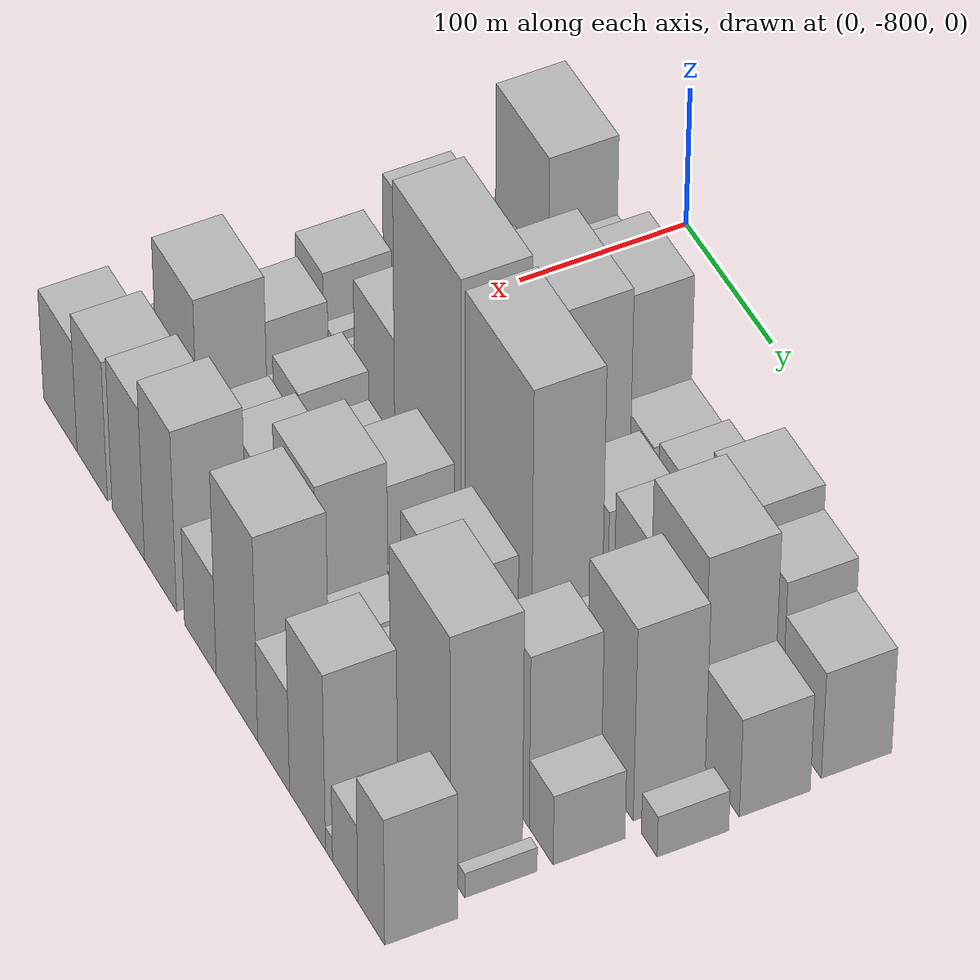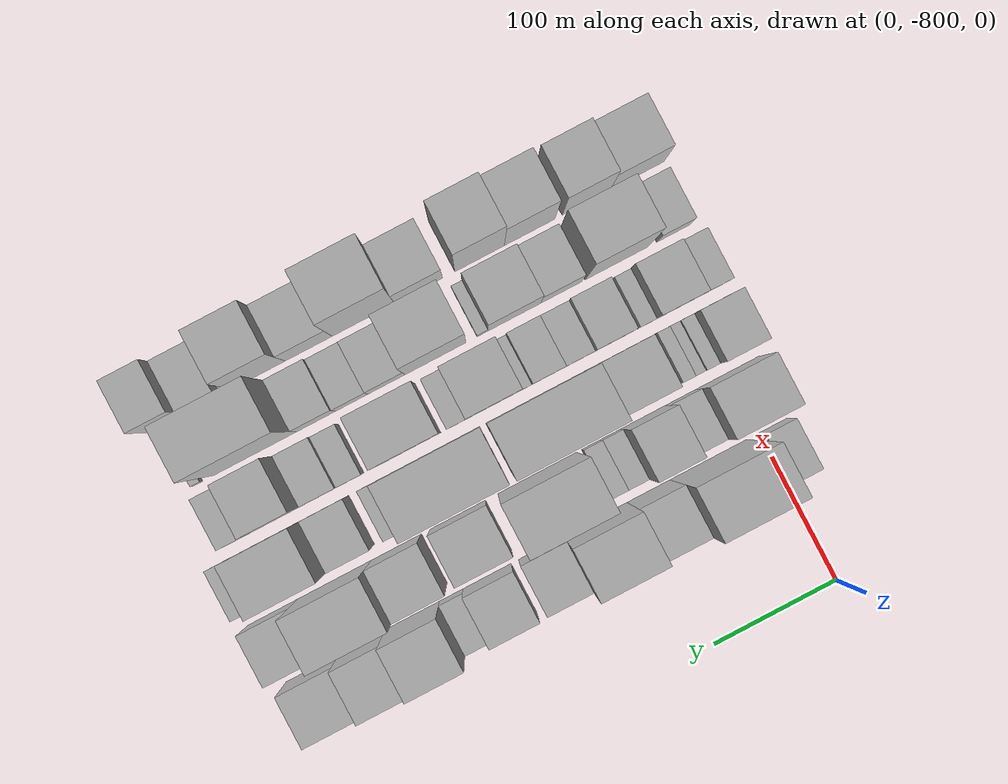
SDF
<sdf version="1.6">
 <world name="default">
  <model name="building_1">
   <static>1</static>
   <pose>100.0000 -809.6743 0 0.000000 0.000000 0.000000</pose>
   <link name="link">
    <pose>0 0 22.50 0 0 0</pose>
    <collision name="collision"><geometry><box><size>40.0000 24.6514 45.0000</size></box></geometry></collision>
    <visual name="visual">
     <cast_shadows>0</cast_shadows>
     <geometry><box><size>40.0000 24.6514 45.0000</size></box></geometry>
     <material>
      <script>
       <uri>model://HANNAS_wall/materials/scripts</uri>
       <uri>model://HANNAS_wall/materials/textures</uri>
       <name>vrc/HANNAS_wall</name>
      </script>
     </material>
    </visual>
   </link>
  </model>
  <model name="building_2">
   <static>1</static>
   <pose>100.0000 -758.1193 0 0.000000 0.000000 0.000000</pose>
   <link name="link">
    <pose>0 0 81.00 0 0 0</pose>
    <collision name="collision"><geometry><box><size>40.0000 62.4585 162.0000</size></box></geometry></collision>
    <visual name="visual">
     <cast_shadows>0</cast_shadows>
     <geometry><box><size>40.0000 62.4585 162.0000</size></box></geometry>
     <material>
      <script>
       <uri>model://HANNAS_wall/materials/scripts</uri>
       <uri>model://HANNAS_wall/materials/textures</uri>
       <name>vrc/HANNAS_wall</name>
      </script>
     </material>
    </visual>
   </link>
  </model>
  <model name="building_3">
   <static>1</static>
   <pose>100.0000 -709.3897 0 0.000000 0.000000 0.000000</pose>
   <link name="link">
    <pose>0 0 52.50 0 0 0</pose>
    <collision name="collision"><geometry><box><size>40.0000 35.0008 105.0000</size></box></geometry></collision>
    <visual name="visual">
     <cast_shadows>0</cast_shadows>
     <geometry><box><size>40.0000 35.0008 105.0000</size></box></geometry>
     <material>
      <script>
       <uri>model://HANNAS_wall/materials/scripts</uri>
       <uri>model://HANNAS_wall/materials/textures</uri>
       <name>vrc/HANNAS_wall</name>
      </script>
     </material>
    </visual>
   </link>
  </model>
  <model name="building_4">
   <static>1</static>
   <pose>100.0000 -665.8691 0 0.000000 0.000000 0.000000</pose>
   <link name="link">
    <pose>0 0 69.00 0 0 0</pose>
    <collision name="collision"><geometry><box><size>40.0000 52.0404 138.0000</size></box></geometry></collision>
    <visual name="visual">
     <cast_shadows>0</cast_shadows>
     <geometry><box><size>40.0000 52.0404 138.0000</size></box></geometry>
     <material>
      <script>
       <uri>model://HANNAS_wall/materials/scripts</uri>
       <uri>model://HANNAS_wall/materials/textures</uri>
       <name>vrc/HANNAS_wall</name>
      </script>
     </material>
    </visual>
   </link>
  </model>
  <model name="building_5">
   <static>1</static>
   <pose>100.0000 -621.6941 0 0.000000 0.000000 0.000000</pose>
   <link name="link">
    <pose>0 0 31.50 0 0 0</pose>
    <collision name="collision"><geometry><box><size>40.0000 36.3097 63.0000</size></box></geometry></collision>
    <visual name="visual">
     <cast_shadows>0</cast_shadows>
     <geometry><box><size>40.0000 36.3097 63.0000</size></box></geometry>
     <material>
      <script>
       <uri>model://HANNAS_wall/materials/scripts</uri>
       <uri>model://HANNAS_wall/materials/textures</uri>
       <name>vrc/HANNAS_wall</name>
      </script>
     </material>
    </visual>
   </link>
  </model>
  <model name="building_6">
   <static>1</static>
   <pose>100.0000 -577.8411 0 0.000000 0.000000 0.000000</pose>
   <link name="link">
    <pose>0 0 36.00 0 0 0</pose>
    <collision name="collision"><geometry><box><size>40.0000 39.3963 72.0000</size></box></geometry></collision>
    <visual name="visual">
     <cast_shadows>0</cast_shadows>
     <geometry><box><size>40.0000 39.3963 72.0000</size></box></geometry>
     <material>
      <script>
       <uri>model://HANNAS_wall/materials/scripts</uri>
       <uri>model://HANNAS_wall/materials/textures</uri>
       <name>vrc/HANNAS_wall</name>
      </script>
     </material>
    </visual>
   </link>
  </model>
  <model name="building_7">
   <static>1</static>
   <pose>100.0000 -548.6347 0 0.000000 0.000000 0.000000</pose>
   <link name="link">
    <pose>0 0 18.00 0 0 0</pose>
    <collision name="collision"><geometry><box><size>40.0000 19.0165 36.0000</size></box></geometry></collision>
    <visual name="visual">
     <cast_shadows>0</cast_shadows>
     <geometry><box><size>40.0000 19.0165 36.0000</size></box></geometry>
     <material>
      <script>
       <uri>model://HANNAS_wall/materials/scripts</uri>
       <uri>model://HANNAS_wall/materials/textures</uri>
       <name>vrc/HANNAS_wall</name>
      </script>
     </material>
    </visual>
   </link>
  </model>
  <model name="building_8">
   <static>1</static>
   <pose>100.0000 -516.9922 0 0.000000 0.000000 0.000000</pose>
   <link name="link">
    <pose>0 0 60.00 0 0 0</pose>
    <collision name="collision"><geometry><box><size>40.0000 44.2686 120.0000</size></box></geometry></collision>
    <visual name="visual">
     <cast_shadows>0</cast_shadows>
     <geometry><box><size>40.0000 44.2686 120.0000</size></box></geometry>
     <material>
      <script>
       <uri>model://HANNAS_wall/materials/scripts</uri>
       <uri>model://HANNAS_wall/materials/textures</uri>
       <name>vrc/HANNAS_wall</name>
      </script>
     </material>
    </visual>
   </link>
  </model>
  <model name="building_9">
   <static>1</static>
   <pose>100.0000 -476.2714 0 0.000000 0.000000 0.000000</pose>
   <link name="link">
    <pose>0 0 51.00 0 0 0</pose>
    <collision name="collision"><geometry><box><size>40.0000 37.1730 102.0000</size></box></geometry></collision>
    <visual name="visual">
     <cast_shadows>0</cast_shadows>
     <geometry><box><size>40.0000 37.1730 102.0000</size></box></geometry>
     <material>
      <script>
       <uri>model://HANNAS_wall/materials/scripts</uri>
       <uri>model://HANNAS_wall/materials/textures</uri>
       <name>vrc/HANNAS_wall</name>
      </script>
     </material>
    </visual>
   </link>
  </model>
  <model name="building_10">
   <static>1</static>
   <pose>100.0000 -436.0106 0 0.000000 0.000000 0.000000</pose>
   <link name="link">
    <pose>0 0 39.00 0 0 0</pose>
    <collision name="collision"><geometry><box><size>40.0000 43.3484 78.0000</size></box></geometry></collision>
    <visual name="visual">
     <cast_shadows>0</cast_shadows>
     <geometry><box><size>40.0000 43.3484 78.0000</size></box></geometry>
     <material>
      <script>
       <uri>model://HANNAS_wall/materials/scripts</uri>
       <uri>model://HANNAS_wall/materials/textures</uri>
       <name>vrc/HANNAS_wall</name>
      </script>
     </material>
    </visual>
   </link>
  </model>
  <model name="building_43">
   <static>1</static>
   <pose>149.0000 -799.1433 0 0.000000 0.000000 0.000000</pose>
   <link name="link">
    <pose>0 0 43.50 0 0 0</pose>
    <collision name="collision"><geometry><box><size>40.0000 51.7134 87.0000</size></box></geometry></collision>
    <visual name="visual">
     <cast_shadows>0</cast_shadows>
     <geometry><box><size>40.0000 51.7134 87.0000</size></box></geometry>
     <material>
      <script>
       <uri>model://HANNAS_wall/materials/scripts</uri>
       <uri>model://HANNAS_wall/materials/textures</uri>
       <name>vrc/HANNAS_wall</name>
      </script>
     </material>
    </visual>
   </link>
  </model>
  <model name="building_44">
   <static>1</static>
   <pose>149.0000 -760.8432 0 0.000000 0.000000 0.000000</pose>
   <link name="link">
    <pose>0 0 21.00 0 0 0</pose>
    <collision name="collision"><geometry><box><size>40.0000 24.8867 42.0000</size></box></geometry></collision>
    <visual name="visual">
     <cast_shadows>0</cast_shadows>
     <geometry><box><size>40.0000 24.8867 42.0000</size></box></geometry>
     <material>
      <script>
       <uri>model://HANNAS_wall/materials/scripts</uri>
       <uri>model://HANNAS_wall/materials/textures</uri>
       <name>vrc/HANNAS_wall</name>
      </script>
     </material>
    </visual>
   </link>
  </model>
  <model name="building_45">
   <static>1</static>
   <pose>149.0000 -730.2889 0 0.000000 0.000000 0.000000</pose>
   <link name="link">
    <pose>0 0 49.50 0 0 0</pose>
    <collision name="collision"><geometry><box><size>40.0000 36.2220 99.0000</size></box></geometry></collision>
    <visual name="visual">
     <cast_shadows>0</cast_shadows>
     <geometry><box><size>40.0000 36.2220 99.0000</size></box></geometry>
     <material>
      <script>
       <uri>model://HANNAS_wall/materials/scripts</uri>
       <uri>model://HANNAS_wall/materials/textures</uri>
       <name>vrc/HANNAS_wall</name>
      </script>
     </material>
    </visual>
   </link>
  </model>
  <model name="building_46">
   <static>1</static>
   <pose>149.0000 -703.9637 0 0.000000 0.000000 0.000000</pose>
   <link name="link">
    <pose>0 0 15.00 0 0 0</pose>
    <collision name="collision"><geometry><box><size>40.0000 16.4283 30.0000</size></box></geometry></collision>
    <visual name="visual">
     <cast_shadows>0</cast_shadows>
     <geometry><box><size>40.0000 16.4283 30.0000</size></box></geometry>
     <material>
      <script>
       <uri>model://HANNAS_wall/materials/scripts</uri>
       <uri>model://HANNAS_wall/materials/textures</uri>
       <name>vrc/HANNAS_wall</name>
      </script>
     </material>
    </visual>
   </link>
  </model>
  <model name="building_47">
   <static>1</static>
   <pose>149.0000 -688.1897 0 0.000000 0.000000 0.000000</pose>
   <link name="link">
    <pose>0 0 15.00 0 0 0</pose>
    <collision name="collision"><geometry><box><size>40.0000 15.1197 30.0000</size></box></geometry></collision>
    <visual name="visual">
     <cast_shadows>0</cast_shadows>
     <geometry><box><size>40.0000 15.1197 30.0000</size></box></geometry>
     <material>
      <script>
       <uri>model://HANNAS_wall/materials/scripts</uri>
       <uri>model://HANNAS_wall/materials/textures</uri>
       <name>vrc/HANNAS_wall</name>
      </script>
     </material>
    </visual>
   </link>
  </model>
  <model name="building_48">
   <static>1</static>
   <pose>149.0000 -644.5503 0 0.000000 0.000000 0.000000</pose>
   <link name="link">
    <pose>0 0 87.00 0 0 0</pose>
    <collision name="collision"><geometry><box><size>40.0000 64.1589 174.0000</size></box></geometry></collision>
    <visual name="visual">
     <cast_shadows>0</cast_shadows>
     <geometry><box><size>40.0000 64.1589 174.0000</size></box></geometry>
     <material>
      <script>
       <uri>model://HANNAS_wall/materials/scripts</uri>
       <uri>model://HANNAS_wall/materials/textures</uri>
       <name>vrc/HANNAS_wall</name>
      </script>
     </material>
    </visual>
   </link>
  </model>
  <model name="building_49">
   <static>1</static>
   <pose>149.0000 -579.8830 0 0.000000 0.000000 0.000000</pose>
   <link name="link">
    <pose>0 0 40.50 0 0 0</pose>
    <collision name="collision"><geometry><box><size>40.0000 45.1758 81.0000</size></box></geometry></collision>
    <visual name="visual">
     <cast_shadows>0</cast_shadows>
     <geometry><box><size>40.0000 45.1758 81.0000</size></box></geometry>
     <material>
      <script>
       <uri>model://HANNAS_wall/materials/scripts</uri>
       <uri>model://HANNAS_wall/materials/textures</uri>
       <name>vrc/HANNAS_wall</name>
      </script>
     </material>
    </visual>
   </link>
  </model>
  <model name="building_50">
   <static>1</static>
   <pose>149.0000 -530.0961 0 0.000000 0.000000 0.000000</pose>
   <link name="link">
    <pose>0 0 51.00 0 0 0</pose>
    <collision name="collision"><geometry><box><size>40.0000 40.3980 102.0000</size></box></geometry></collision>
    <visual name="visual">
     <cast_shadows>0</cast_shadows>
     <geometry><box><size>40.0000 40.3980 102.0000</size></box></geometry>
     <material>
      <script>
       <uri>model://HANNAS_wall/materials/scripts</uri>
       <uri>model://HANNAS_wall/materials/textures</uri>
       <name>vrc/HANNAS_wall</name>
      </script>
     </material>
    </visual>
   </link>
  </model>
  <model name="building_51">
   <static>1</static>
   <pose>149.0000 -479.9265 0 0.000000 0.000000 0.000000</pose>
   <link name="link">
    <pose>0 0 75.00 0 0 0</pose>
    <collision name="collision"><geometry><box><size>40.0000 59.9411 150.0000</size></box></geometry></collision>
    <visual name="visual">
     <cast_shadows>0</cast_shadows>
     <geometry><box><size>40.0000 59.9411 150.0000</size></box></geometry>
     <material>
      <script>
       <uri>model://HANNAS_wall/materials/scripts</uri>
       <uri>model://HANNAS_wall/materials/textures</uri>
       <name>vrc/HANNAS_wall</name>
      </script>
     </material>
    </visual>
   </link>
  </model>
  <model name="building_52">
   <static>1</static>
   <pose>149.0000 -429.6404 0 0.000000 0.000000 0.000000</pose>
   <link name="link">
    <pose>0 0 36.00 0 0 0</pose>
    <collision name="collision"><geometry><box><size>40.0000 40.6311 72.0000</size></box></geometry></collision>
    <visual name="visual">
     <cast_shadows>0</cast_shadows>
     <geometry><box><size>40.0000 40.6311 72.0000</size></box></geometry>
     <material>
      <script>
       <uri>model://HANNAS_wall/materials/scripts</uri>
       <uri>model://HANNAS_wall/materials/textures</uri>
       <name>vrc/HANNAS_wall</name>
      </script>
     </material>
    </visual>
   </link>
  </model>
  <model name="building_88">
   <static>1</static>
   <pose>198.0000 -812.7470 0 0.000000 0.000000 0.000000</pose>
   <link name="link">
    <pose>0 0 30.00 0 0 0</pose>
    <collision name="collision"><geometry><box><size>40.0000 34.5060 60.0000</size></box></geometry></collision>
    <visual name="visual">
     <cast_shadows>0</cast_shadows>
     <geometry><box><size>40.0000 34.5060 60.0000</size></box></geometry>
     <material>
      <script>
       <uri>model://HANNAS_wall/materials/scripts</uri>
       <uri>model://HANNAS_wall/materials/textures</uri>
       <name>vrc/HANNAS_wall</name>
      </script>
     </material>
    </visual>
   </link>
  </model>
  <model name="building_89">
   <static>1</static>
   <pose>198.0000 -790.1452 0 0.000000 0.000000 0.000000</pose>
   <link name="link">
    <pose>0 0 12.00 0 0 0</pose>
    <collision name="collision"><geometry><box><size>40.0000 10.6977 24.0000</size></box></geometry></collision>
    <visual name="visual">
     <cast_shadows>0</cast_shadows>
     <geometry><box><size>40.0000 10.6977 24.0000</size></box></geometry>
     <material>
      <script>
       <uri>model://HANNAS_wall/materials/scripts</uri>
       <uri>model://HANNAS_wall/materials/textures</uri>
       <name>vrc/HANNAS_wall</name>
      </script>
     </material>
    </visual>
   </link>
  </model>
  <model name="building_90">
   <static>1</static>
   <pose>198.0000 -780.5945 0 0.000000 0.000000 0.000000</pose>
   <link name="link">
    <pose>0 0 9.00 0 0 0</pose>
    <collision name="collision"><geometry><box><size>40.0000 8.4039 18.0000</size></box></geometry></collision>
    <visual name="visual">
     <cast_shadows>0</cast_shadows>
     <geometry><box><size>40.0000 8.4039 18.0000</size></box></geometry>
     <material>
      <script>
       <uri>model://HANNAS_wall/materials/scripts</uri>
       <uri>model://HANNAS_wall/materials/textures</uri>
       <name>vrc/HANNAS_wall</name>
      </script>
     </material>
    </visual>
   </link>
  </model>
  <model name="building_91">
   <static>1</static>
   <pose>198.0000 -771.1914 0 0.000000 0.000000 0.000000</pose>
   <link name="link">
    <pose>0 0 10.50 0 0 0</pose>
    <collision name="collision"><geometry><box><size>40.0000 10.4023 21.0000</size></box></geometry></collision>
    <visual name="visual">
     <cast_shadows>0</cast_shadows>
     <geometry><box><size>40.0000 10.4023 21.0000</size></box></geometry>
     <material>
      <script>
       <uri>model://HANNAS_wall/materials/scripts</uri>
       <uri>model://HANNAS_wall/materials/textures</uri>
       <name>vrc/HANNAS_wall</name>
      </script>
     </material>
    </visual>
   </link>
  </model>
  <model name="building_92">
   <static>1</static>
   <pose>198.0000 -732.4139 0 0.000000 0.000000 0.000000</pose>
   <link name="link">
    <pose>0 0 45.00 0 0 0</pose>
    <collision name="collision"><geometry><box><size>40.0000 49.1527 90.0000</size></box></geometry></collision>
    <visual name="visual">
     <cast_shadows>0</cast_shadows>
     <geometry><box><size>40.0000 49.1527 90.0000</size></box></geometry>
     <material>
      <script>
       <uri>model://HANNAS_wall/materials/scripts</uri>
       <uri>model://HANNAS_wall/materials/textures</uri>
       <name>vrc/HANNAS_wall</name>
      </script>
     </material>
    </visual>
   </link>
  </model>
  <model name="building_93">
   <static>1</static>
   <pose>198.0000 -668.1284 0 0.000000 0.000000 0.000000</pose>
   <link name="link">
    <pose>0 0 102.00 0 0 0</pose>
    <collision name="collision"><geometry><box><size>40.0000 79.4184 204.0000</size></box></geometry></collision>
    <visual name="visual">
     <cast_shadows>0</cast_shadows>
     <geometry><box><size>40.0000 79.4184 204.0000</size></box></geometry>
     <material>
      <script>
       <uri>model://HANNAS_wall/materials/scripts</uri>
       <uri>model://HANNAS_wall/materials/textures</uri>
       <name>vrc/HANNAS_wall</name>
      </script>
     </material>
    </visual>
   </link>
  </model>
  <model name="building_94">
   <static>1</static>
   <pose>198.0000 -584.6430 0 0.000000 0.000000 0.000000</pose>
   <link name="link">
    <pose>0 0 100.50 0 0 0</pose>
    <collision name="collision"><geometry><box><size>40.0000 77.5525 201.0000</size></box></geometry></collision>
    <visual name="visual">
     <cast_shadows>0</cast_shadows>
     <geometry><box><size>40.0000 77.5525 201.0000</size></box></geometry>
     <material>
      <script>
       <uri>model://HANNAS_wall/materials/scripts</uri>
       <uri>model://HANNAS_wall/materials/textures</uri>
       <name>vrc/HANNAS_wall</name>
      </script>
     </material>
    </visual>
   </link>
  </model>
  <model name="building_95">
   <static>1</static>
   <pose>198.0000 -535.8532 0 0.000000 0.000000 0.000000</pose>
   <link name="link">
    <pose>0 0 19.50 0 0 0</pose>
    <collision name="collision"><geometry><box><size>40.0000 20.0270 39.0000</size></box></geometry></collision>
    <visual name="visual">
     <cast_shadows>0</cast_shadows>
     <geometry><box><size>40.0000 20.0270 39.0000</size></box></geometry>
     <material>
      <script>
       <uri>model://HANNAS_wall/materials/scripts</uri>
       <uri>model://HANNAS_wall/materials/textures</uri>
       <name>vrc/HANNAS_wall</name>
      </script>
     </material>
    </visual>
   </link>
  </model>
  <model name="building_96">
   <static>1</static>
   <pose>198.0000 -499.8906 0 0.000000 0.000000 0.000000</pose>
   <link name="link">
    <pose>0 0 33.00 0 0 0</pose>
    <collision name="collision"><geometry><box><size>40.0000 33.8983 66.0000</size></box></geometry></collision>
    <visual name="visual">
     <cast_shadows>0</cast_shadows>
     <geometry><box><size>40.0000 33.8983 66.0000</size></box></geometry>
     <material>
      <script>
       <uri>model://HANNAS_wall/materials/scripts</uri>
       <uri>model://HANNAS_wall/materials/textures</uri>
       <name>vrc/HANNAS_wall</name>
      </script>
     </material>
    </visual>
   </link>
  </model>
  <model name="building_97">
   <static>1</static>
   <pose>198.0000 -456.5145 0 0.000000 0.000000 0.000000</pose>
   <link name="link">
    <pose>0 0 70.50 0 0 0</pose>
    <collision name="collision"><geometry><box><size>40.0000 52.8538 141.0000</size></box></geometry></collision>
    <visual name="visual">
     <cast_shadows>0</cast_shadows>
     <geometry><box><size>40.0000 52.8538 141.0000</size></box></geometry>
     <material>
      <script>
       <uri>model://HANNAS_wall/materials/scripts</uri>
       <uri>model://HANNAS_wall/materials/textures</uri>
       <name>vrc/HANNAS_wall</name>
      </script>
     </material>
    </visual>
   </link>
  </model>
  <model name="building_98">
   <static>1</static>
   <pose>198.0000 -412.2709 0 0.000000 0.000000 0.000000</pose>
   <link name="link">
    <pose>0 0 15.00 0 0 0</pose>
    <collision name="collision"><geometry><box><size>40.0000 17.6335 30.0000</size></box></geometry></collision>
    <visual name="visual">
     <cast_shadows>0</cast_shadows>
     <geometry><box><size>40.0000 17.6335 30.0000</size></box></geometry>
     <material>
      <script>
       <uri>model://HANNAS_wall/materials/scripts</uri>
       <uri>model://HANNAS_wall/materials/textures</uri>
       <name>vrc/HANNAS_wall</name>
      </script>
     </material>
    </visual>
   </link>
  </model>
  <model name="building_132">
   <static>1</static>
   <pose>247.0000 -818.7364 0 0.000000 0.000000 0.000000</pose>
   <link name="link">
    <pose>0 0 19.50 0 0 0</pose>
    <collision name="collision"><geometry><box><size>40.0000 22.5273 39.0000</size></box></geometry></collision>
    <visual name="visual">
     <cast_shadows>0</cast_shadows>
     <geometry><box><size>40.0000 22.5273 39.0000</size></box></geometry>
     <material>
      <script>
       <uri>model://HANNAS_wall/materials/scripts</uri>
       <uri>model://HANNAS_wall/materials/textures</uri>
       <name>vrc/HANNAS_wall</name>
      </script>
     </material>
    </visual>
   </link>
  </model>
  <model name="building_133">
   <static>1</static>
   <pose>247.0000 -788.8290 0 0.000000 0.000000 0.000000</pose>
   <link name="link">
    <pose>0 0 33.00 0 0 0</pose>
    <collision name="collision"><geometry><box><size>40.0000 37.2874 66.0000</size></box></geometry></collision>
    <visual name="visual">
     <cast_shadows>0</cast_shadows>
     <geometry><box><size>40.0000 37.2874 66.0000</size></box></geometry>
     <material>
      <script>
       <uri>model://HANNAS_wall/materials/scripts</uri>
       <uri>model://HANNAS_wall/materials/textures</uri>
       <name>vrc/HANNAS_wall</name>
      </script>
     </material>
    </visual>
   </link>
  </model>
  <model name="building_134">
   <static>1</static>
   <pose>247.0000 -763.6136 0 0.000000 0.000000 0.000000</pose>
   <link name="link">
    <pose>0 0 13.50 0 0 0</pose>
    <collision name="collision"><geometry><box><size>40.0000 13.1435 27.0000</size></box></geometry></collision>
    <visual name="visual">
     <cast_shadows>0</cast_shadows>
     <geometry><box><size>40.0000 13.1435 27.0000</size></box></geometry>
     <material>
      <script>
       <uri>model://HANNAS_wall/materials/scripts</uri>
       <uri>model://HANNAS_wall/materials/textures</uri>
       <name>vrc/HANNAS_wall</name>
      </script>
     </material>
    </visual>
   </link>
  </model>
  <model name="building_135">
   <static>1</static>
   <pose>247.0000 -736.0739 0 0.000000 0.000000 0.000000</pose>
   <link name="link">
    <pose>0 0 30.00 0 0 0</pose>
    <collision name="collision"><geometry><box><size>40.0000 31.9359 60.0000</size></box></geometry></collision>
    <visual name="visual">
     <cast_shadows>0</cast_shadows>
     <geometry><box><size>40.0000 31.9359 60.0000</size></box></geometry>
     <material>
      <script>
       <uri>model://HANNAS_wall/materials/scripts</uri>
       <uri>model://HANNAS_wall/materials/textures</uri>
       <name>vrc/HANNAS_wall</name>
      </script>
     </material>
    </visual>
   </link>
  </model>
  <model name="building_136">
   <static>1</static>
   <pose>247.0000 -708.5276 0 0.000000 0.000000 0.000000</pose>
   <link name="link">
    <pose>0 0 19.50 0 0 0</pose>
    <collision name="collision"><geometry><box><size>40.0000 23.1567 39.0000</size></box></geometry></collision>
    <visual name="visual">
     <cast_shadows>0</cast_shadows>
     <geometry><box><size>40.0000 23.1567 39.0000</size></box></geometry>
     <material>
      <script>
       <uri>model://HANNAS_wall/materials/scripts</uri>
       <uri>model://HANNAS_wall/materials/textures</uri>
       <name>vrc/HANNAS_wall</name>
      </script>
     </material>
    </visual>
   </link>
  </model>
  <model name="building_137">
   <static>1</static>
   <pose>247.0000 -683.6351 0 0.000000 0.000000 0.000000</pose>
   <link name="link">
    <pose>0 0 22.50 0 0 0</pose>
    <collision name="collision"><geometry><box><size>40.0000 26.6282 45.0000</size></box></geometry></collision>
    <visual name="visual">
     <cast_shadows>0</cast_shadows>
     <geometry><box><size>40.0000 26.6282 45.0000</size></box></geometry>
     <material>
      <script>
       <uri>model://HANNAS_wall/materials/scripts</uri>
       <uri>model://HANNAS_wall/materials/textures</uri>
       <name>vrc/HANNAS_wall</name>
      </script>
     </material>
    </visual>
   </link>
  </model>
  <model name="building_138">
   <static>1</static>
   <pose>247.0000 -665.7167 0 0.000000 0.000000 0.000000</pose>
   <link name="link">
    <pose>0 0 10.50 0 0 0</pose>
    <collision name="collision"><geometry><box><size>40.0000 9.2086 21.0000</size></box></geometry></collision>
    <visual name="visual">
     <cast_shadows>0</cast_shadows>
     <geometry><box><size>40.0000 9.2086 21.0000</size></box></geometry>
     <material>
      <script>
       <uri>model://HANNAS_wall/materials/scripts</uri>
       <uri>model://HANNAS_wall/materials/textures</uri>
       <name>vrc/HANNAS_wall</name>
      </script>
     </material>
    </visual>
   </link>
  </model>
  <model name="building_139">
   <static>1</static>
   <pose>247.0000 -639.1347 0 0.000000 0.000000 0.000000</pose>
   <link name="link">
    <pose>0 0 43.50 0 0 0</pose>
    <collision name="collision"><geometry><box><size>40.0000 43.9554 87.0000</size></box></geometry></collision>
    <visual name="visual">
     <cast_shadows>0</cast_shadows>
     <geometry><box><size>40.0000 43.9554 87.0000</size></box></geometry>
     <material>
      <script>
       <uri>model://HANNAS_wall/materials/scripts</uri>
       <uri>model://HANNAS_wall/materials/textures</uri>
       <name>vrc/HANNAS_wall</name>
      </script>
     </material>
    </visual>
   </link>
  </model>
  <model name="building_140">
   <static>1</static>
   <pose>247.0000 -609.4444 0 0.000000 0.000000 0.000000</pose>
   <link name="link">
    <pose>0 0 15.00 0 0 0</pose>
    <collision name="collision"><geometry><box><size>40.0000 15.4254 30.0000</size></box></geometry></collision>
    <visual name="visual">
     <cast_shadows>0</cast_shadows>
     <geometry><box><size>40.0000 15.4254 30.0000</size></box></geometry>
     <material>
      <script>
       <uri>model://HANNAS_wall/materials/scripts</uri>
       <uri>model://HANNAS_wall/materials/textures</uri>
       <name>vrc/HANNAS_wall</name>
      </script>
     </material>
    </visual>
   </link>
  </model>
  <model name="building_141">
   <static>1</static>
   <pose>247.0000 -569.9625 0 0.000000 0.000000 0.000000</pose>
   <link name="link">
    <pose>0 0 45.00 0 0 0</pose>
    <collision name="collision"><geometry><box><size>40.0000 53.5383 90.0000</size></box></geometry></collision>
    <visual name="visual">
     <cast_shadows>0</cast_shadows>
     <geometry><box><size>40.0000 53.5383 90.0000</size></box></geometry>
     <material>
      <script>
       <uri>model://HANNAS_wall/materials/scripts</uri>
       <uri>model://HANNAS_wall/materials/textures</uri>
       <name>vrc/HANNAS_wall</name>
      </script>
     </material>
    </visual>
   </link>
  </model>
  <model name="building_142">
   <static>1</static>
   <pose>247.0000 -524.2104 0 0.000000 0.000000 0.000000</pose>
   <link name="link">
    <pose>0 0 19.50 0 0 0</pose>
    <collision name="collision"><geometry><box><size>40.0000 19.9659 39.0000</size></box></geometry></collision>
    <visual name="visual">
     <cast_shadows>0</cast_shadows>
     <geometry><box><size>40.0000 19.9659 39.0000</size></box></geometry>
     <material>
      <script>
       <uri>model://HANNAS_wall/materials/scripts</uri>
       <uri>model://HANNAS_wall/materials/textures</uri>
       <name>vrc/HANNAS_wall</name>
      </script>
     </material>
    </visual>
   </link>
  </model>
  <model name="building_143">
   <static>1</static>
   <pose>247.0000 -500.2449 0 0.000000 0.000000 0.000000</pose>
   <link name="link">
    <pose>0 0 25.50 0 0 0</pose>
    <collision name="collision"><geometry><box><size>40.0000 27.9651 51.0000</size></box></geometry></collision>
    <visual name="visual">
     <cast_shadows>0</cast_shadows>
     <geometry><box><size>40.0000 27.9651 51.0000</size></box></geometry>
     <material>
      <script>
       <uri>model://HANNAS_wall/materials/scripts</uri>
       <uri>model://HANNAS_wall/materials/textures</uri>
       <name>vrc/HANNAS_wall</name>
      </script>
     </material>
    </visual>
   </link>
  </model>
  <model name="building_144">
   <static>1</static>
   <pose>247.0000 -467.3510 0 0.000000 0.000000 0.000000</pose>
   <link name="link">
    <pose>0 0 63.00 0 0 0</pose>
    <collision name="collision"><geometry><box><size>40.0000 37.8227 126.0000</size></box></geometry></collision>
    <visual name="visual">
     <cast_shadows>0</cast_shadows>
     <geometry><box><size>40.0000 37.8227 126.0000</size></box></geometry>
     <material>
      <script>
       <uri>model://HANNAS_wall/materials/scripts</uri>
       <uri>model://HANNAS_wall/materials/textures</uri>
       <name>vrc/HANNAS_wall</name>
      </script>
     </material>
    </visual>
   </link>
  </model>
  <model name="building_145">
   <static>1</static>
   <pose>247.0000 -434.8979 0 0.000000 0.000000 0.000000</pose>
   <link name="link">
    <pose>0 0 25.50 0 0 0</pose>
    <collision name="collision"><geometry><box><size>40.0000 27.0834 51.0000</size></box></geometry></collision>
    <visual name="visual">
     <cast_shadows>0</cast_shadows>
     <geometry><box><size>40.0000 27.0834 51.0000</size></box></geometry>
     <material>
      <script>
       <uri>model://HANNAS_wall/materials/scripts</uri>
       <uri>model://HANNAS_wall/materials/textures</uri>
       <name>vrc/HANNAS_wall</name>
      </script>
     </material>
    </visual>
   </link>
  </model>
  <model name="building_179">
   <static>1</static>
   <pose>296.0000 -811.6144 0 0.000000 0.000000 0.000000</pose>
   <link name="link">
    <pose>0 0 24.00 0 0 0</pose>
    <collision name="collision"><geometry><box><size>40.0000 26.7713 48.0000</size></box></geometry></collision>
    <visual name="visual">
     <cast_shadows>0</cast_shadows>
     <geometry><box><size>40.0000 26.7713 48.0000</size></box></geometry>
     <material>
      <script>
       <uri>model://HANNAS_wall/materials/scripts</uri>
       <uri>model://HANNAS_wall/materials/textures</uri>
       <name>vrc/HANNAS_wall</name>
      </script>
     </material>
    </visual>
   </link>
  </model>
  <model name="building_180">
   <static>1</static>
   <pose>296.0000 -765.5930 0 0.000000 0.000000 0.000000</pose>
   <link name="link">
    <pose>0 0 66.00 0 0 0</pose>
    <collision name="collision"><geometry><box><size>40.0000 51.2715 132.0000</size></box></geometry></collision>
    <visual name="visual">
     <cast_shadows>0</cast_shadows>
     <geometry><box><size>40.0000 51.2715 132.0000</size></box></geometry>
     <material>
      <script>
       <uri>model://HANNAS_wall/materials/scripts</uri>
       <uri>model://HANNAS_wall/materials/textures</uri>
       <name>vrc/HANNAS_wall</name>
      </script>
     </material>
    </visual>
   </link>
  </model>
  <model name="building_181">
   <static>1</static>
   <pose>296.0000 -720.2961 0 0.000000 0.000000 0.000000</pose>
   <link name="link">
    <pose>0 0 31.50 0 0 0</pose>
    <collision name="collision"><geometry><box><size>40.0000 33.3223 63.0000</size></box></geometry></collision>
    <visual name="visual">
     <cast_shadows>0</cast_shadows>
     <geometry><box><size>40.0000 33.3223 63.0000</size></box></geometry>
     <material>
      <script>
       <uri>model://HANNAS_wall/materials/scripts</uri>
       <uri>model://HANNAS_wall/materials/textures</uri>
       <name>vrc/HANNAS_wall</name>
      </script>
     </material>
    </visual>
   </link>
  </model>
  <model name="building_182">
   <static>1</static>
   <pose>296.0000 -682.2127 0 0.000000 0.000000 0.000000</pose>
   <link name="link">
    <pose>0 0 40.50 0 0 0</pose>
    <collision name="collision"><geometry><box><size>40.0000 42.8445 81.0000</size></box></geometry></collision>
    <visual name="visual">
     <cast_shadows>0</cast_shadows>
     <geometry><box><size>40.0000 42.8445 81.0000</size></box></geometry>
     <material>
      <script>
       <uri>model://HANNAS_wall/materials/scripts</uri>
       <uri>model://HANNAS_wall/materials/textures</uri>
       <name>vrc/HANNAS_wall</name>
      </script>
     </material>
    </visual>
   </link>
  </model>
  <model name="building_183">
   <static>1</static>
   <pose>296.0000 -656.3661 0 0.000000 0.000000 0.000000</pose>
   <link name="link">
    <pose>0 0 9.00 0 0 0</pose>
    <collision name="collision"><geometry><box><size>40.0000 8.8486 18.0000</size></box></geometry></collision>
    <visual name="visual">
     <cast_shadows>0</cast_shadows>
     <geometry><box><size>40.0000 8.8486 18.0000</size></box></geometry>
     <material>
      <script>
       <uri>model://HANNAS_wall/materials/scripts</uri>
       <uri>model://HANNAS_wall/materials/textures</uri>
       <name>vrc/HANNAS_wall</name>
      </script>
     </material>
    </visual>
   </link>
  </model>
  <model name="building_184">
   <static>1</static>
   <pose>296.0000 -618.2038 0 0.000000 0.000000 0.000000</pose>
   <link name="link">
    <pose>0 0 66.00 0 0 0</pose>
    <collision name="collision"><geometry><box><size>40.0000 49.4760 132.0000</size></box></geometry></collision>
    <visual name="visual">
     <cast_shadows>0</cast_shadows>
     <geometry><box><size>40.0000 49.4760 132.0000</size></box></geometry>
     <material>
      <script>
       <uri>model://HANNAS_wall/materials/scripts</uri>
       <uri>model://HANNAS_wall/materials/textures</uri>
       <name>vrc/HANNAS_wall</name>
      </script>
     </material>
    </visual>
   </link>
  </model>
  <model name="building_185">
   <static>1</static>
   <pose>296.0000 -578.4129 0 0.000000 0.000000 0.000000</pose>
   <link name="link">
    <pose>0 0 25.50 0 0 0</pose>
    <collision name="collision"><geometry><box><size>40.0000 30.1058 51.0000</size></box></geometry></collision>
    <visual name="visual">
     <cast_shadows>0</cast_shadows>
     <geometry><box><size>40.0000 30.1058 51.0000</size></box></geometry>
     <material>
      <script>
       <uri>model://HANNAS_wall/materials/scripts</uri>
       <uri>model://HANNAS_wall/materials/textures</uri>
       <name>vrc/HANNAS_wall</name>
      </script>
     </material>
    </visual>
   </link>
  </model>
  <model name="building_186">
   <static>1</static>
   <pose>296.0000 -550.3217 0 0.000000 0.000000 0.000000</pose>
   <link name="link">
    <pose>0 0 24.00 0 0 0</pose>
    <collision name="collision"><geometry><box><size>40.0000 26.0766 48.0000</size></box></geometry></collision>
    <visual name="visual">
     <cast_shadows>0</cast_shadows>
     <geometry><box><size>40.0000 26.0766 48.0000</size></box></geometry>
     <material>
      <script>
       <uri>model://HANNAS_wall/materials/scripts</uri>
       <uri>model://HANNAS_wall/materials/textures</uri>
       <name>vrc/HANNAS_wall</name>
      </script>
     </material>
    </visual>
   </link>
  </model>
  <model name="building_187">
   <static>1</static>
   <pose>296.0000 -521.6510 0 0.000000 0.000000 0.000000</pose>
   <link name="link">
    <pose>0 0 30.00 0 0 0</pose>
    <collision name="collision"><geometry><box><size>40.0000 31.2648 60.0000</size></box></geometry></collision>
    <visual name="visual">
     <cast_shadows>0</cast_shadows>
     <geometry><box><size>40.0000 31.2648 60.0000</size></box></geometry>
     <material>
      <script>
       <uri>model://HANNAS_wall/materials/scripts</uri>
       <uri>model://HANNAS_wall/materials/textures</uri>
       <name>vrc/HANNAS_wall</name>
      </script>
     </material>
    </visual>
   </link>
  </model>
  <model name="building_188">
   <static>1</static>
   <pose>296.0000 -471.8604 0 0.000000 0.000000 0.000000</pose>
   <link name="link">
    <pose>0 0 87.00 0 0 0</pose>
    <collision name="collision"><geometry><box><size>40.0000 68.3164 174.0000</size></box></geometry></collision>
    <visual name="visual">
     <cast_shadows>0</cast_shadows>
     <geometry><box><size>40.0000 68.3164 174.0000</size></box></geometry>
     <material>
      <script>
       <uri>model://HANNAS_wall/materials/scripts</uri>
       <uri>model://HANNAS_wall/materials/textures</uri>
       <name>vrc/HANNAS_wall</name>
      </script>
     </material>
    </visual>
   </link>
  </model>
  <model name="building_189">
   <static>1</static>
   <pose>296.0000 -424.8837 0 0.000000 0.000000 0.000000</pose>
   <link name="link">
    <pose>0 0 9.00 0 0 0</pose>
    <collision name="collision"><geometry><box><size>40.0000 7.6371 18.0000</size></box></geometry></collision>
    <visual name="visual">
     <cast_shadows>0</cast_shadows>
     <geometry><box><size>40.0000 7.6371 18.0000</size></box></geometry>
     <material>
      <script>
       <uri>model://HANNAS_wall/materials/scripts</uri>
       <uri>model://HANNAS_wall/materials/textures</uri>
       <name>vrc/HANNAS_wall</name>
      </script>
     </material>
    </visual>
   </link>
  </model>
  <model name="building_223">
   <static>1</static>
   <pose>345.0000 -808.1364 0 0.000000 0.000000 0.000000</pose>
   <link name="link">
    <pose>0 0 40.50 0 0 0</pose>
    <collision name="collision"><geometry><box><size>40.0000 43.7272 81.0000</size></box></geometry></collision>
    <visual name="visual">
     <cast_shadows>0</cast_shadows>
     <geometry><box><size>40.0000 43.7272 81.0000</size></box></geometry>
     <material>
      <script>
       <uri>model://HANNAS_wall/materials/scripts</uri>
       <uri>model://HANNAS_wall/materials/textures</uri>
       <name>vrc/HANNAS_wall</name>
      </script>
     </material>
    </visual>
   </link>
  </model>
  <model name="building_224">
   <static>1</static>
   <pose>345.0000 -766.6770 0 0.000000 0.000000 0.000000</pose>
   <link name="link">
    <pose>0 0 51.00 0 0 0</pose>
    <collision name="collision"><geometry><box><size>40.0000 39.1915 102.0000</size></box></geometry></collision>
    <visual name="visual">
     <cast_shadows>0</cast_shadows>
     <geometry><box><size>40.0000 39.1915 102.0000</size></box></geometry>
     <material>
      <script>
       <uri>model://HANNAS_wall/materials/scripts</uri>
       <uri>model://HANNAS_wall/materials/textures</uri>
       <name>vrc/HANNAS_wall</name>
      </script>
     </material>
    </visual>
   </link>
  </model>
  <model name="building_225">
   <static>1</static>
   <pose>345.0000 -720.5396 0 0.000000 0.000000 0.000000</pose>
   <link name="link">
    <pose>0 0 55.50 0 0 0</pose>
    <collision name="collision"><geometry><box><size>40.0000 41.0833 111.0000</size></box></geometry></collision>
    <visual name="visual">
     <cast_shadows>0</cast_shadows>
     <geometry><box><size>40.0000 41.0833 111.0000</size></box></geometry>
     <material>
      <script>
       <uri>model://HANNAS_wall/materials/scripts</uri>
       <uri>model://HANNAS_wall/materials/textures</uri>
       <name>vrc/HANNAS_wall</name>
      </script>
     </material>
    </visual>
   </link>
  </model>
  <model name="building_226">
   <static>1</static>
   <pose>345.0000 -679.8378 0 0.000000 0.000000 0.000000</pose>
   <link name="link">
    <pose>0 0 66.00 0 0 0</pose>
    <collision name="collision"><geometry><box><size>40.0000 40.3203 132.0000</size></box></geometry></collision>
    <visual name="visual">
     <cast_shadows>0</cast_shadows>
     <geometry><box><size>40.0000 40.3203 132.0000</size></box></geometry>
     <material>
      <script>
       <uri>model://HANNAS_wall/materials/scripts</uri>
       <uri>model://HANNAS_wall/materials/textures</uri>
       <name>vrc/HANNAS_wall</name>
      </script>
     </material>
    </visual>
   </link>
  </model>
  <model name="building_227">
   <static>1</static>
   <pose>345.0000 -630.1137 0 0.000000 0.000000 0.000000</pose>
   <link name="link">
    <pose>0 0 36.00 0 0 0</pose>
    <collision name="collision"><geometry><box><size>40.0000 39.1278 72.0000</size></box></geometry></collision>
    <visual name="visual">
     <cast_shadows>0</cast_shadows>
     <geometry><box><size>40.0000 39.1278 72.0000</size></box></geometry>
     <material>
      <script>
       <uri>model://HANNAS_wall/materials/scripts</uri>
       <uri>model://HANNAS_wall/materials/textures</uri>
       <name>vrc/HANNAS_wall</name>
      </script>
     </material>
    </visual>
   </link>
  </model>
  <model name="building_228">
   <static>1</static>
   <pose>345.0000 -585.2559 0 0.000000 0.000000 0.000000</pose>
   <link name="link">
    <pose>0 0 75.00 0 0 0</pose>
    <collision name="collision"><geometry><box><size>40.0000 50.5878 150.0000</size></box></geometry></collision>
    <visual name="visual">
     <cast_shadows>0</cast_shadows>
     <geometry><box><size>40.0000 50.5878 150.0000</size></box></geometry>
     <material>
      <script>
       <uri>model://HANNAS_wall/materials/scripts</uri>
       <uri>model://HANNAS_wall/materials/textures</uri>
       <name>vrc/HANNAS_wall</name>
      </script>
     </material>
    </visual>
   </link>
  </model>
  <model name="building_229">
   <static>1</static>
   <pose>345.0000 -540.8450 0 0.000000 0.000000 0.000000</pose>
   <link name="link">
    <pose>0 0 37.50 0 0 0</pose>
    <collision name="collision"><geometry><box><size>40.0000 38.2339 75.0000</size></box></geometry></collision>
    <visual name="visual">
     <cast_shadows>0</cast_shadows>
     <geometry><box><size>40.0000 38.2339 75.0000</size></box></geometry>
     <material>
      <script>
       <uri>model://HANNAS_wall/materials/scripts</uri>
       <uri>model://HANNAS_wall/materials/textures</uri>
       <name>vrc/HANNAS_wall</name>
      </script>
     </material>
    </visual>
   </link>
  </model>
  <model name="building_230">
   <static>1</static>
   <pose>345.0000 -500.4968 0 0.000000 0.000000 0.000000</pose>
   <link name="link">
    <pose>0 0 64.50 0 0 0</pose>
    <collision name="collision"><geometry><box><size>40.0000 42.4625 129.0000</size></box></geometry></collision>
    <visual name="visual">
     <cast_shadows>0</cast_shadows>
     <geometry><box><size>40.0000 42.4625 129.0000</size></box></geometry>
     <material>
      <script>
       <uri>model://HANNAS_wall/materials/scripts</uri>
       <uri>model://HANNAS_wall/materials/textures</uri>
       <name>vrc/HANNAS_wall</name>
      </script>
     </material>
    </visual>
   </link>
  </model>
  <model name="building_231">
   <static>1</static>
   <pose>345.0000 -475.1513 0 0.000000 0.000000 0.000000</pose>
   <link name="link">
    <pose>0 0 9.00 0 0 0</pose>
    <collision name="collision"><geometry><box><size>40.0000 8.2285 18.0000</size></box></geometry></collision>
    <visual name="visual">
     <cast_shadows>0</cast_shadows>
     <geometry><box><size>40.0000 8.2285 18.0000</size></box></geometry>
     <material>
      <script>
       <uri>model://HANNAS_wall/materials/scripts</uri>
       <uri>model://HANNAS_wall/materials/textures</uri>
       <name>vrc/HANNAS_wall</name>
      </script>
     </material>
    </visual>
   </link>
  </model>
  <model name="building_232">
   <static>1</static>
   <pose>345.0000 -456.2551 0 0.000000 0.000000 0.000000</pose>
   <link name="link">
    <pose>0 0 28.50 0 0 0</pose>
    <collision name="collision"><geometry><box><size>40.0000 29.5639 57.0000</size></box></geometry></collision>
    <visual name="visual">
     <cast_shadows>0</cast_shadows>
     <geometry><box><size>40.0000 29.5639 57.0000</size></box></geometry>
     <material>
      <script>
       <uri>model://HANNAS_wall/materials/scripts</uri>
       <uri>model://HANNAS_wall/materials/textures</uri>
       <name>vrc/HANNAS_wall</name>
      </script>
     </material>
    </visual>
   </link>
  </model>
  <model name="building_233">
   <static>1</static>
   <pose>345.0000 -425.9666 0 0.000000 0.000000 0.000000</pose>
   <link name="link">
    <pose>0 0 46.50 0 0 0</pose>
    <collision name="collision"><geometry><box><size>40.0000 31.0131 93.0000</size></box></geometry></collision>
    <visual name="visual">
     <cast_shadows>0</cast_shadows>
     <geometry><box><size>40.0000 31.0131 93.0000</size></box></geometry>
     <material>
      <script>
       <uri>model://HANNAS_wall/materials/scripts</uri>
       <uri>model://HANNAS_wall/materials/textures</uri>
       <name>vrc/HANNAS_wall</name>
      </script>
     </material>
    </visual>
   </link>
  </model>
 </world>
</sdf>
